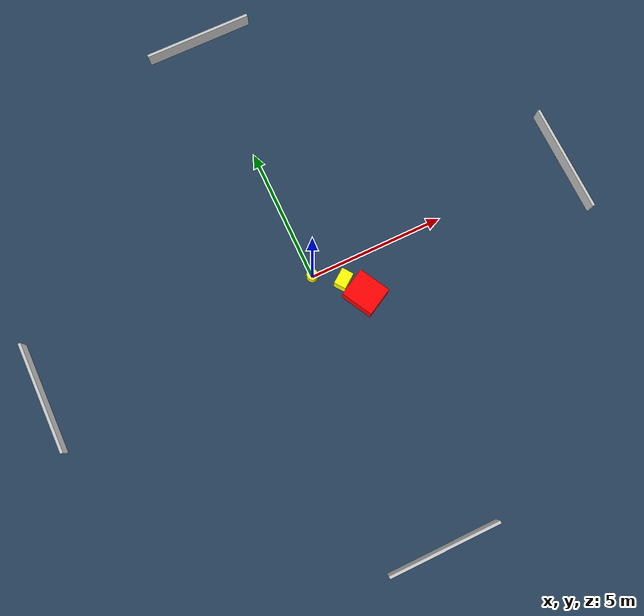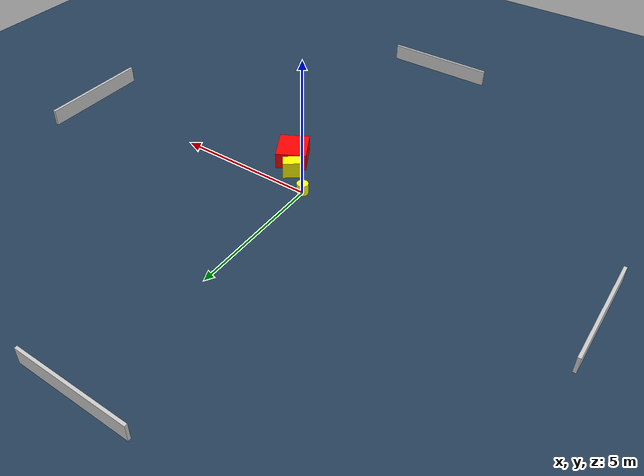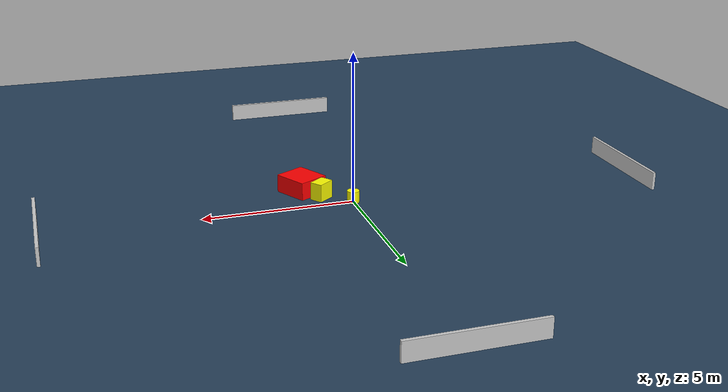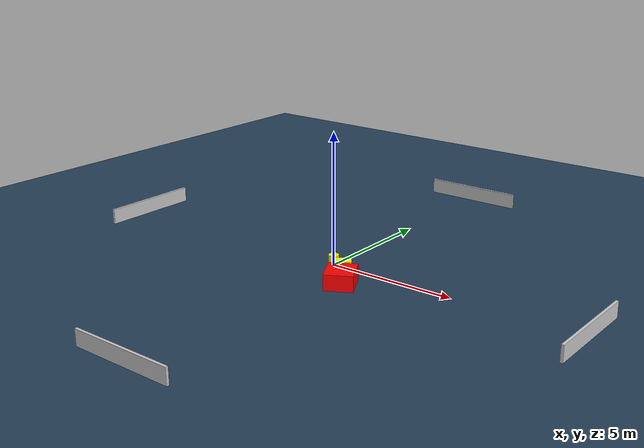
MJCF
<?xml version="1.0" ?>
<mujoco model="generated_environment">
  <option timestep="0.01" integrator="RK4" cone="elliptic"/>
  <default>
    <geom density="1"/>
  </default>
  <asset>
    <texture builtin="gradient" height="3072" name="skybox" rgb1="0.3 0.5 0.7" rgb2="0 0 0" type="skybox" width="512"/>
    <texture builtin="checker" height="300" name="groundplane" rgb1="0.2 0.3 0.4" rgb2="0.1 0.2 0.3" type="2d" width="300"/>
    <material name="groundplane" reflectance="0.2" texrepeat="5 5" texture="groundplane"/>
  </asset>
  <worldbody>
    <light dir="0 0 -1" directional="true" pos="0 0 1.5"/>
    <geom condim="3" friction="0.5 0.005 0.001" material="groundplane" name="floor" pos="0 0 0" size="0 0 0.05" type="plane"/>
    <body name="walls">
      <geom name="wall_1" condim="4" pos="-10.0 0.0 0.3" rgba="0.800000011920929 0.800000011920929 0.800000011920929 1.0" size="0.05 2.0 0.3" type="box"/>
      <geom name="wall_2" condim="4" pos="10.0 0.0 0.3" rgba="0.800000011920929 0.800000011920929 0.800000011920929 1.0" size="0.05 2.0 0.3" type="box"/>
      <geom name="wall_3" condim="4" pos="0.0 -10.0 0.3" rgba="0.800000011920929 0.800000011920929 0.800000011920929 1.0" size="2.0 0.05 0.3" type="box"/>
      <geom name="wall_4" condim="4" pos="0.0 10.0 0.3" rgba="0.800000011920929 0.800000011920929 0.800000011920929 1.0" size="2.0 0.05 0.3" type="box"/>
    </body>
    <body name="robot">
      <joint name="joint_x" type="slide" pos="0 0 0" axis="1 0 0"/>
      <joint name="joint_y" type="slide" pos="0 0 0" axis="0 1 0"/>
      <geom name="robot" type="cylinder" pos="0.0 0.0 0.2" size="0.2 0.2 0.0" mass="5.0" friction="1.0 0.005 0.0001" condim="4" rgba="1.0 1.0 0.0 1.0"/>
    </body>
    <body name="obstacle_1_movable">
      <geom name="obstacle_1_movable" condim="4" pos="0.908017728419413 -0.6228001240403979 0.3" euler="0 0 126.47487226991859" friction="0.0 0.005 0.001" rgba="1.0 1.0 0.0 1.0" size="0.21784668001296295 0.3038232711600265 0.3" type="box" mass="0.1"/>
      <joint type="free"/>
    </body>
    <body name="obstacle_2_static">
      <geom name="obstacle_2_static" condim="4" pos="1.3850669304825467 -1.373465085207737 0.3" euler="0 0 28.361056678941647" friction="0.0 0.005 0.001" rgba="1.0 0.0 0.0 1.0" size="0.5343214277143082 0.6032758387503914 0.3" type="box"/>
    </body>
  </worldbody>
  <actuator>
    <motor name="actuator_x" joint="joint_x" gear="1" ctrlrange="-1 1"/>
    <motor name="actuator_y" joint="joint_y" gear="1" ctrlrange="-1 1"/>
  </actuator>
</mujoco>
